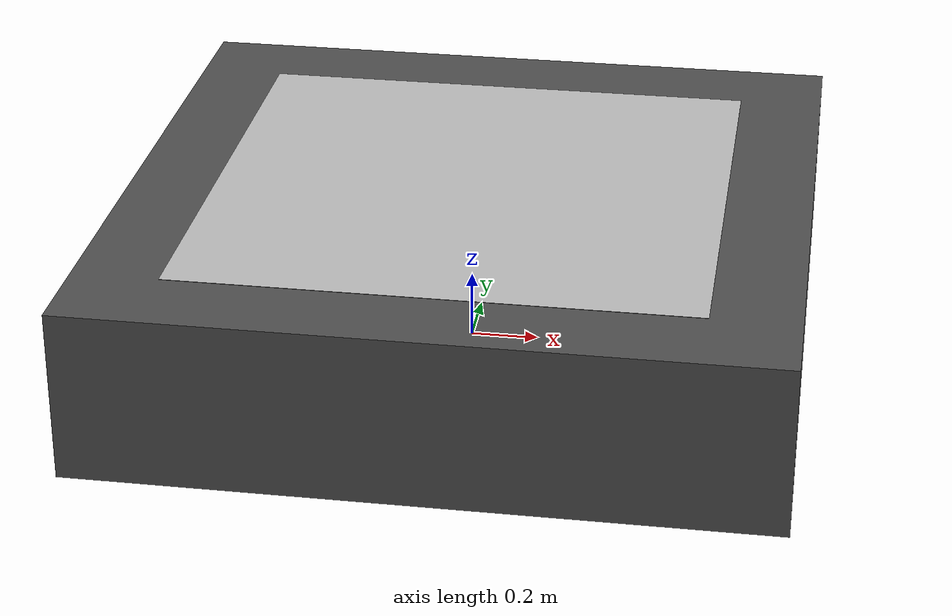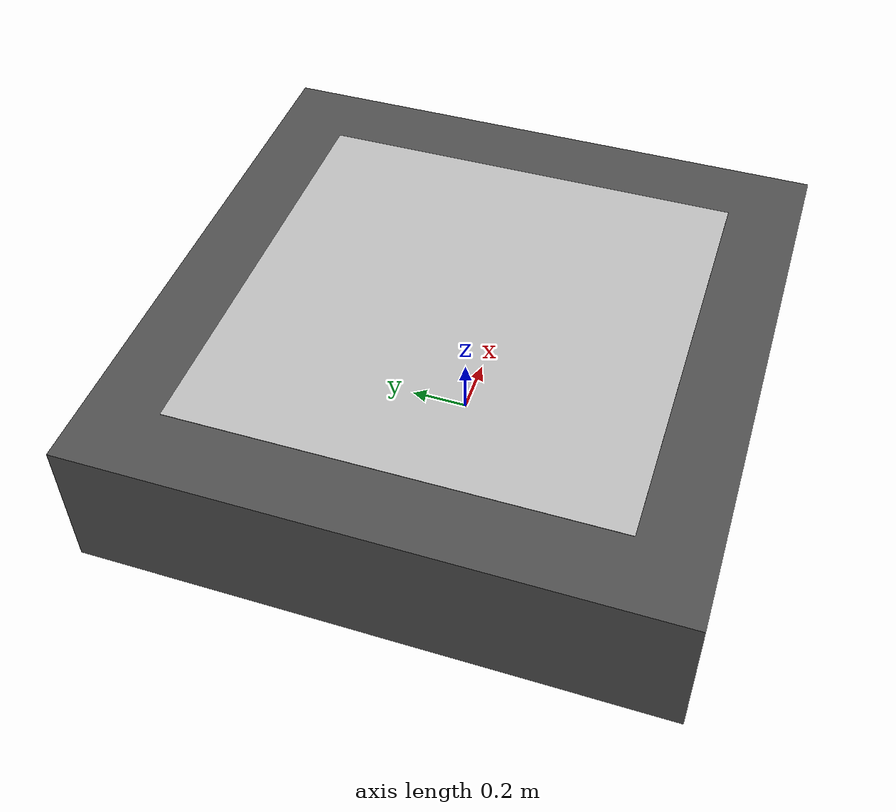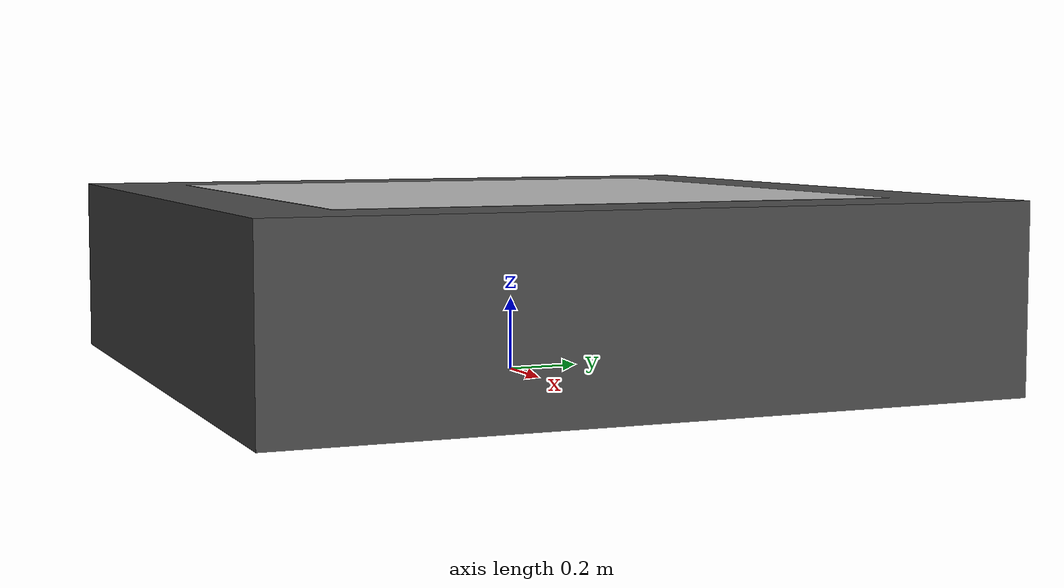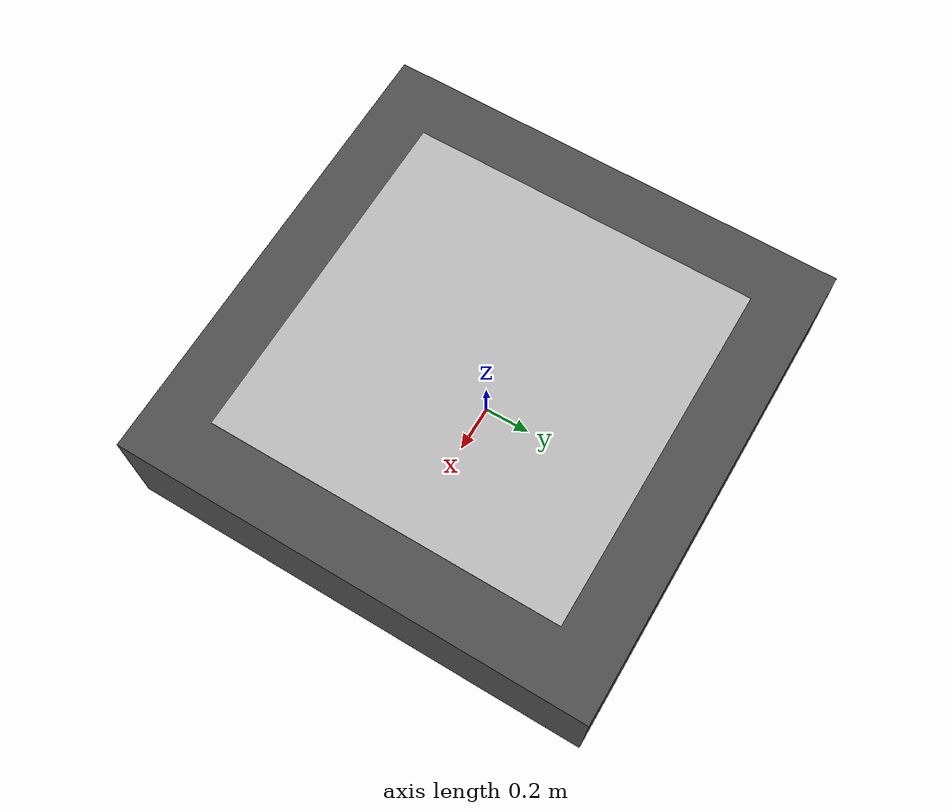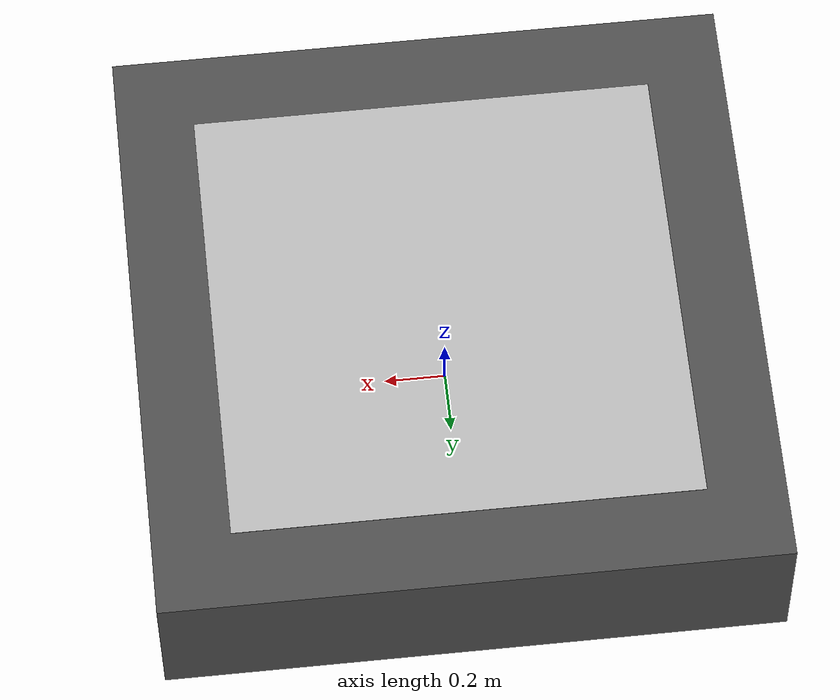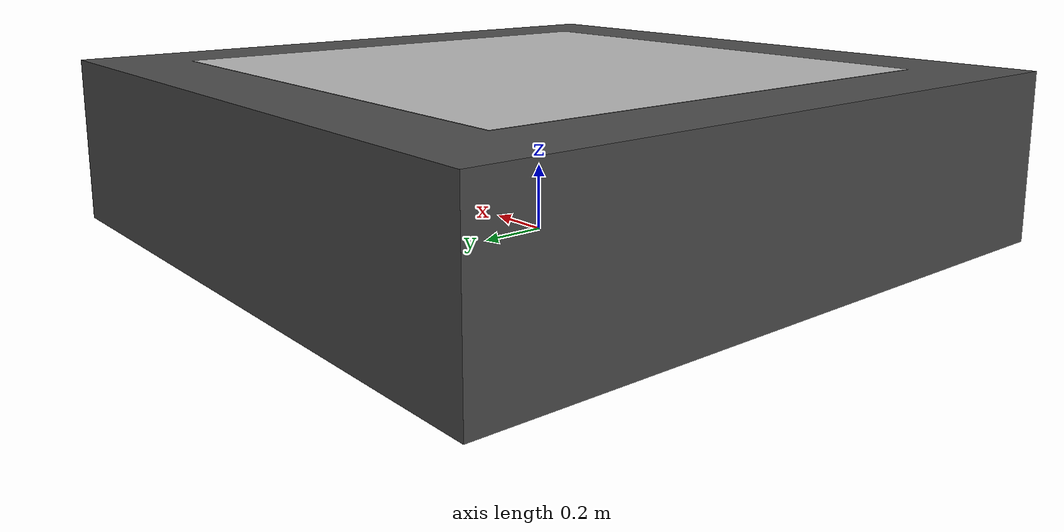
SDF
<?xml version="1.0"?>
<sdf version="1.6">
  <model name="moving_platform">
    <pose>0 0 0.25 0 0 0</pose>
    <static>false</static>

    <!-- Platform base -->
    <link name="platform_base">
      <pose>0 0 0 0 0 0</pose>
      <inertial>
        <mass>50.0</mass>
        <inertia>
          <ixx>16.67</ixx>
          <iyy>16.67</iyy>
          <izz>33.33</izz>
          <ixy>0</ixy>
          <ixz>0</ixz>
          <iyz>0</iyz>
        </inertia>
      </inertial>

      <!-- Platform collision -->
      <collision name="platform_collision">
        <geometry>
          <box>
            <size>2.0 2.0 0.5</size>
          </box>
        </geometry>
      </collision>

      <!-- Platform visual -->
      <visual name="platform_visual">
        <geometry>
          <box>
            <size>2.0 2.0 0.5</size>
          </box>
        </geometry>
        <material>
          <ambient>0.3 0.3 0.3 1</ambient>
          <diffuse>0.3 0.3 0.3 1</diffuse>
          <specular>0.1 0.1 0.1 1</specular>
        </material>
      </visual>

      <!-- ArUco marker visual on top surface -->
      <visual name="aruco_marker">
        <pose>0 0 0.251 0 0 0</pose>
        <geometry>
          <box>
            <size>1.5 1.5 0.001</size>
          </box>
        </geometry>
        <material>
          <script>
            <uri>model://moving_platform/materials/scripts</uri>
            <uri>model://moving_platform/materials/textures</uri>
            <name>ArUcoMarker</name>
          </script>
        </material>
      </visual>
    </link>

    <!-- Force/torque plugin for control -->
    <plugin name="force_controller" filename="libgazebo_ros_force.so">
      <robotNamespace>/platform</robotNamespace>
      <bodyName>platform_base</bodyName>
      <topicName>cmd_force</topicName>
    </plugin>

    <!-- P3D plugin for odometry -->
    <plugin name="p3d_base_controller" filename="libgazebo_ros_p3d.so">
      <alwaysOn>true</alwaysOn>
      <updateRate>50.0</updateRate>
      <bodyName>platform_base</bodyName>
      <topicName>platform/odom</topicName>
      <gaussianNoise>0.01</gaussianNoise>
      <frameName>world</frameName>
      <xyzOffsets>0 0 0</xyzOffsets>
      <rpyOffsets>0 0 0</rpyOffsets>
    </plugin>

    <!-- GPS plugin -->
    <plugin name="gps_plugin" filename="libgazebo_ros_gps_sensor.so">
      <robotNamespace>/platform</robotNamespace>
      <topicName>gps/fix</topicName>
      <velocityTopicName>gps/fix_velocity</velocityTopicName>
      <referenceLatitude>49.9</referenceLatitude>
      <referenceLongitude>8.9</referenceLongitude>
      <referenceHeading>0</referenceHeading>
      <referenceAltitude>0</referenceAltitude>
      <drift>0.0001 0.0001 0.0001</drift>
    </plugin>
  </model>
</sdf>
